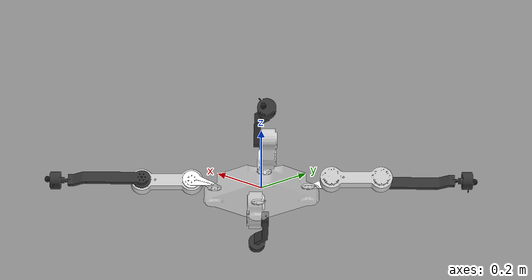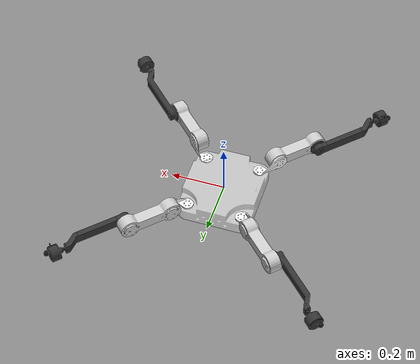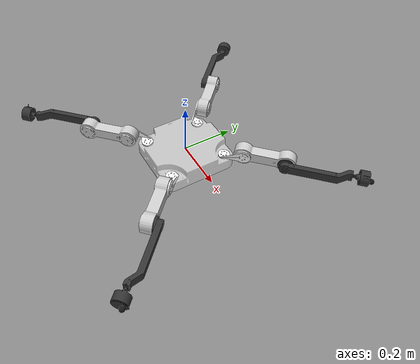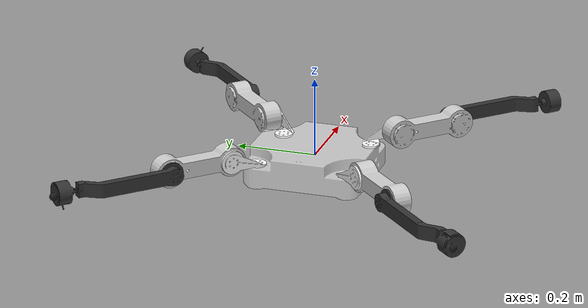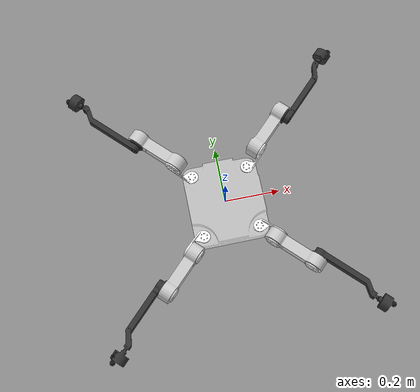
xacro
<?xml version="1.0" encoding="utf-8"?>
<robot xmlns:xacro="http://ros.org/wiki/xacro" name="sizu">
  <!-- 过渡用 base（很小的可视box，不参与物理） -->
  <link name="map">
    <visual>
      <origin xyz="0.0 0.0 0.0" rpy="0.0 0.0 0.0" />
      <geometry>
        <box size="0.001 0.001 0.001"/>
      </geometry>
    </visual>
  </link>

  <joint name="map_joint" type="fixed">
    <parent link="map"/>
    <child link="base_link"/>
    <origin xyz="0.0 0.0 0.0" rpy="0.0 0.0 0.0"/>
  </joint>

  <!-- 机身 base_link -->
   <link name="base_link">
    <inertial>
      <origin xyz="0 0 0" rpy="0 0 0" />
      <mass value="3.2" />
      <inertia ixx="0.0085" ixy="0.0" ixz="0.0" iyy="0.0095" iyz="0.0" izz="0.0140" />
    </inertial>
    <visual>
      <origin xyz="0 0 0" rpy="0 0 0" />
      <geometry>
        <mesh filename="package://sizu_gazebo/meshes/base_link.STL" />
      </geometry>
      <material name="">
        <color rgba="1 1 1 0.5" />
      </material>
    </visual>
    <collision>
      <origin xyz="0 0 0" rpy="0 0 0" />
      <geometry>
        <box size="0.1705 0.1555 0.05"/>
      </geometry>
    </collision>
  </link>

  <!-- ==================== FL Leg ==================== -->
  <link name="coxa_FL">
    <inertial>
      <origin xyz="0.04 0 0" rpy="0 0 0" />
      <mass value="0.08" />
      <inertia ixx="1.5e-5" ixy="0.0" ixz="0.0" iyy="5.0e-5" iyz="0.0" izz="5.0e-5" />
    </inertial>
    <visual>
      <origin xyz="0 0 0" rpy="0 0 0" />
      <geometry>
        <mesh filename="package://sizu_gazebo/meshes/coxa_FL.STL" />
      </geometry>
      <material name="">
        <color rgba="1 1 1 1" />
      </material>
    </visual>
    <collision>
      <origin xyz="0.0 0 -0.02" rpy="0 0 0" />
      <geometry>
        <cylinder length="0.02" radius="0.02"/>
      </geometry>
    </collision>
  </link>

  <joint name="coxa_joint_FL" type="revolute">
    <origin xyz="0.10275 0.11525 0" rpy="0 0 0" />
    <parent link="base_link" />
    <child link="coxa_FL" />
    <axis xyz="0 0 1" />
    <dynamics damping="0.2" friction="0.02" />
    <limit lower="-0.9" upper="0.9" effort="60" velocity="12"/>
  </joint>

  <link name="femur_FL">
    <inertial>
      <origin xyz="0.08 0 0" rpy="0 0 0" />
      <mass value="0.32" />
      <inertia ixx="8.0e-5" ixy="0.0" ixz="0.0" iyy="7.5e-4" iyz="0.0" izz="7.5e-4" />
    </inertial>
    <visual>
      <origin xyz="0 0 0" rpy="0 0 0" />
      <geometry>
        <mesh filename="package://sizu_gazebo/meshes/femur_FL.STL" />
      </geometry>
      <material name="">
        <color rgba="0.8 0.8 0.8 1" />
      </material>
    </visual>
    <collision>
      <origin xyz="0.08 0 -0.015" rpy="0 0 0" />
      <geometry>
        <box size="0.14 0.03 0.03"/>
      </geometry>
    </collision>
  </link>

  <joint name="femur_joint_FL" type="revolute">
    <origin xyz="0.0635321928743235 0.0437332030011003 0.0255" rpy="1.5707963267949 0 0.78539816339745" />
    <parent link="coxa_FL" />
    <child link="femur_FL" />
    <axis xyz="0 0 -1" />
    <dynamics damping="0.2" friction="0.02" />
    <limit lower="-1.6" upper="1.6" effort="60" velocity="16"/>
  </joint>

  <link name="tibia_FL">
    <inertial>
      <origin xyz="0.16 0 0" rpy="0 0 0" />
      <mass value="0.16" />
      <inertia ixx="2.0e-5" ixy="0.0" ixz="0.0" iyy="8.0e-4" iyz="0.0" izz="8.0e-4" />
    </inertial>
    <visual>
      <origin xyz="0 0 0" rpy="0 0 0" />
      <geometry>
        <mesh filename="package://sizu_gazebo/meshes/tibia_FL.STL" />
      </geometry>
      <material name="">
        <color rgba="0.2 0.2 0.2 1" />
      </material>
    </visual>
    <collision>
      <origin xyz="0.16 0 0" rpy="0 0 0" />
      <geometry>
        <box size="0.22 0.022 0.022"/>
      </geometry>
    </collision>
  </link>

  <joint name="tibia_joint_FL" type="revolute">
    <origin xyz="0.164 0 0" rpy="0 0 0" />
    <parent link="femur_FL" />
    <child link="tibia_FL" />
    <axis xyz="0 0 -1" />
    <dynamics damping="0.2" friction="0.02" />
    <limit lower="-2.4" upper="2.4" effort="60" velocity="16"/>
  </joint>

  <joint name="foot_fixed_FL" type="fixed" dont_collapse="true">
    <origin xyz="0.31 0 0" rpy="0 0 0" />
    <parent link="tibia_FL" />
    <child link="foot_FL" />
  </joint>

  <link name="foot_FL">
    <inertial>
      <origin xyz="0 0 0" rpy="0 0 0" />
      <mass value="0.03" />
      <inertia ixx="4.0e-6" ixy="0.0" ixz="0.0" iyy="4.0e-6" iyz="0.0" izz="4.0e-6" />
    </inertial>
    <visual>
      <origin xyz="0 0 0" rpy="0 0 0" />
      <geometry>
        <sphere radius="0.01"/>
      </geometry>
      <material name="">
        <color rgba="0.1 0.1 0.1 1" />
      </material>
    </visual>
    <collision>
      <origin xyz="0 0 0" rpy="0 0 0" />
      <geometry>
        <sphere radius="0.016"/>
      </geometry>
    </collision>
  </link>

  <!-- ==================== RL Leg ==================== -->
  <link name="coxa_RL">
    <inertial>
      <origin xyz="0.04 0 0" rpy="0 0 0" />
      <mass value="0.08" />
      <inertia ixx="1.5e-5" ixy="0.0" ixz="0.0" iyy="5.0e-5" iyz="0.0" izz="5.0e-5" />
    </inertial>
    <visual>
      <origin xyz="0 0 0" rpy="0 0 0" />
      <geometry>
        <mesh filename="package://sizu_gazebo/meshes/coxa_RL.STL" />
      </geometry>
      <material name="">
        <color rgba="1 1 1 1" />
      </material>
    </visual>
    <collision>
      <origin xyz="0.0 0 -0.02" rpy="0 0 0" />
      <geometry>
        <cylinder length="0.02" radius="0.02"/>
      </geometry>
    </collision>
  </link>

  <joint name="coxa_joint_RL" type="revolute">
    <origin xyz="-0.10275 0.11525 0" rpy="0 0 0" />
    <parent link="base_link" />
    <child link="coxa_RL" />
    <axis xyz="0 0 1" />
    <dynamics damping="0.2" friction="0.02" />
    <limit lower="-0.9" upper="0.9" effort="60" velocity="12"/>
  </joint>

  <link name="femur_RL">
    <inertial>
      <origin xyz="0.08 0 0" rpy="0 0 0" />
      <mass value="0.32" />
      <inertia ixx="8.0e-5" ixy="0.0" ixz="0.0" iyy="7.5e-4" iyz="0.0" izz="7.5e-4" />
    </inertial>
    <visual>
      <origin xyz="0 0 0" rpy="0 0 0" />
      <geometry>
        <mesh filename="package://sizu_gazebo/meshes/femur_RL.STL" />
      </geometry>
      <material name="">
        <color rgba="0.8 0.8 0.8 1" />
      </material>
    </visual>
    <collision>
      <origin xyz="0.08 0 -0.015" rpy="0 0 0" />
      <geometry>
        <box size="0.14 0.03 0.03"/>
      </geometry>
    </collision>
  </link>

  <joint name="femur_joint_RL" type="revolute">
    <origin xyz="-0.0635321928743236 0.0437332030011001 0.0255" rpy="-1.5707963267949 0 2.35619449019235" />
    <parent link="coxa_RL" />
    <child link="femur_RL" />
    <axis xyz="0 0 -1" />
    <dynamics damping="0.2" friction="0.02" />
    <limit lower="-1.6" upper="1.6" effort="60" velocity="16"/>
  </joint>

  <link name="tibia_RL">
    <inertial>
      <origin xyz="0.16 0 0" rpy="0 0 0" />
      <mass value="0.16" />
      <inertia ixx="2.0e-5" ixy="0.0" ixz="0.0" iyy="8.0e-4" iyz="0.0" izz="8.0e-4" />
    </inertial>
    <visual>
      <origin xyz="0 0 0" rpy="0 0 0" />
      <geometry>
        <mesh filename="package://sizu_gazebo/meshes/tibia_RL.STL" />
      </geometry>
      <material name="">
        <color rgba="0.2 0.2 0.2 1" />
      </material>
    </visual>
    <collision>
      <origin xyz="0.16 0 0" rpy="0 0 0" />
      <geometry>
        <box size="0.22 0.022 0.022"/>
      </geometry>
    </collision>
  </link>

  <joint name="tibia_joint_RL" type="revolute">
    <origin xyz="0.164 0 0" rpy="0 0 0" />
    <parent link="femur_RL" />
    <child link="tibia_RL" />
    <axis xyz="0 0 -1" />
    <dynamics damping="0.2" friction="0.02" />
    <limit lower="-2.4" upper="2.4" effort="60" velocity="16"/>
  </joint>

  <joint name="foot_fixed_RL" type="fixed" dont_collapse="true">
    <origin xyz="0.31 0 0" rpy="0 0 0" />
    <parent link="tibia_RL" />
    <child link="foot_RL" />
  </joint>

  <link name="foot_RL">
    <inertial>
      <origin xyz="0 0 0" rpy="0 0 0" />
      <mass value="0.03" />
      <inertia ixx="4.0e-6" ixy="0.0" ixz="0.0" iyy="4.0e-6" iyz="0.0" izz="4.0e-6" />
    </inertial>
    <visual>
      <origin xyz="0 0 0" rpy="0 0 0" />
      <geometry>
        <sphere radius="0.01"/>
      </geometry>
      <material name="">
        <color rgba="0.1 0.1 0.1 1" />
      </material>
    </visual>
    <collision>
      <origin xyz="0 0 0" rpy="0 0 0" />
      <geometry>
        <sphere radius="0.016"/>
      </geometry>
    </collision>
  </link>

  <!-- ==================== FR Leg ==================== -->
  <link name="coxa_FR">
    <inertial>
      <origin xyz="0.04 0 0" rpy="0 0 0" />
      <mass value="0.08" />
      <inertia ixx="1.5e-5" ixy="0.0" ixz="0.0" iyy="5.0e-5" iyz="0.0" izz="5.0e-5" />
    </inertial>
    <visual>
      <origin xyz="0 0 0" rpy="0 0 0" />
      <geometry>
        <mesh filename="package://sizu_gazebo/meshes/coxa_FR.STL" />
      </geometry>
      <material name="">
        <color rgba="1 1 1 1" />
      </material>
    </visual>
    <collision>
      <origin xyz="0.0 0 -0.02" rpy="0 0 0" />
      <geometry>
        <cylinder length="0.02" radius="0.02"/>
      </geometry>
    </collision>
  </link>

  <joint name="coxa_joint_FR" type="revolute">
    <origin xyz="0.10275 -0.11525 0" rpy="0 0 0" />
    <parent link="base_link" />
    <child link="coxa_FR" />
    <axis xyz="0 0 1" />
    <dynamics damping="0.2" friction="0.02" />
    <limit lower="-0.9" upper="0.9" effort="60" velocity="12"/>
  </joint>

  <link name="femur_FR">
    <inertial>
      <origin xyz="0.08 0 0" rpy="0 0 0" />
      <mass value="0.32" />
      <inertia ixx="8.0e-5" ixy="0.0" ixz="0.0" iyy="7.5e-4" iyz="0.0" izz="7.5e-4" />
    </inertial>
    <visual>
      <origin xyz="0 0 0" rpy="0 0 0" />
      <geometry>
        <mesh filename="package://sizu_gazebo/meshes/femur_FR.STL" />
      </geometry>
      <material name="">
        <color rgba="0.8 0.8 0.8 1" />
      </material>
    </visual>
    <collision>
      <origin xyz="0.08 0 -0.015" rpy="0 0 0" />
      <geometry>
        <box size="0.14 0.03 0.03"/>
      </geometry>
    </collision>
  </link>

  <joint name="femur_joint_FR" type="revolute">
    <origin xyz="0.0635321928743236 -0.0437332030011001 0.0255000000000001" rpy="-1.5707963267949 0 -0.785398163397447" />
    <parent link="coxa_FR" />
    <child link="femur_FR" />
    <axis xyz="0 0 -1" />
    <dynamics damping="0.2" friction="0.02" />
    <limit lower="-1.6" upper="1.6" effort="60" velocity="16"/>
  </joint>

  <link name="tibia_FR">
    <inertial>
      <origin xyz="0.16 0 0" rpy="0 0 0" />
      <mass value="0.16" />
      <inertia ixx="2.0e-5" ixy="0.0" ixz="0.0" iyy="8.0e-4" iyz="0.0" izz="8.0e-4" />
    </inertial>
    <visual>
      <origin xyz="0 0 0" rpy="0 0 0" />
      <geometry>
        <mesh filename="package://sizu_gazebo/meshes/tibia_FR.STL" />
      </geometry>
      <material name="">
        <color rgba="0.2 0.2 0.2 1" />
      </material>
    </visual>
    <collision>
      <origin xyz="0.16 0 0" rpy="0 0 0" />
      <geometry>
        <box size="0.22 0.022 0.022"/>
      </geometry>
    </collision>
  </link>

  <joint name="tibia_joint_FR" type="revolute">
    <origin xyz="0.164 0 0" rpy="0 0 0" />
    <parent link="femur_FR" />
    <child link="tibia_FR" />
    <axis xyz="0 0 -1" />
    <dynamics damping="0.2" friction="0.02" />
    <limit lower="-2.4" upper="2.4" effort="60" velocity="16"/>
  </joint>

  <joint name="foot_fixed_FR" type="fixed" dont_collapse="true">
    <origin xyz="0.31 0 0" rpy="0 0 0" />
    <parent link="tibia_FR" />
    <child link="foot_FR" />
  </joint>

  <link name="foot_FR">
    <inertial>
      <origin xyz="0 0 0" rpy="0 0 0" />
      <mass value="0.03" />
      <inertia ixx="4.0e-6" ixy="0.0" ixz="0.0" iyy="4.0e-6" iyz="0.0" izz="4.0e-6" />
    </inertial>
    <visual>
      <origin xyz="0 0 0" rpy="0 0 0" />
      <geometry>
        <sphere radius="0.01"/>
      </geometry>
      <material name="">
        <color rgba="0.1 0.1 0.1 1" />
      </material>
    </visual>
    <collision>
      <origin xyz="0 0 0" rpy="0 0 0" />
      <geometry>
        <sphere radius="0.016"/>
      </geometry>
    </collision>
  </link>

  <!-- ==================== RR Leg ==================== -->
  <link name="coxa_RR">
    <inertial>
      <origin xyz="0.04 0 0" rpy="0 0 0" />
      <mass value="0.08" />
      <inertia ixx="1.5e-5" ixy="0.0" ixz="0.0" iyy="5.0e-5" iyz="0.0" izz="5.0e-5" />
    </inertial>
    <visual>
      <origin xyz="0 0 0" rpy="0 0 0" />
      <geometry>
        <mesh filename="package://sizu_gazebo/meshes/coxa_RR.STL" />
      </geometry>
      <material name="">
        <color rgba="1 1 1 1" />
      </material>
    </visual>
    <collision>
      <origin xyz="0.0 0 -0.02" rpy="0 0 0" />
      <geometry>
        <cylinder length="0.02" radius="0.02"/>
      </geometry>
    </collision>
  </link>

  <joint name="coxa_joint_RR" type="revolute">
    <origin xyz="-0.10275 -0.11525 0" rpy="0 0 0" />
    <parent link="base_link" />
    <child link="coxa_RR" />
    <axis xyz="0 0 1" />
    <dynamics damping="0.2" friction="0.02" />
    <limit lower="-0.9" upper="0.9" effort="60" velocity="12"/>
  </joint>

  <link name="femur_RR">
    <inertial>
      <origin xyz="0.08 0 0" rpy="0 0 0" />
      <mass value="0.32" />
      <inertia ixx="8.0e-5" ixy="0.0" ixz="0.0" iyy="7.5e-4" iyz="0.0" izz="7.5e-4" />
    </inertial>
    <visual>
      <origin xyz="0 0 0" rpy="0 0 0" />
      <geometry>
        <mesh filename="package://sizu_gazebo/meshes/femur_RR.STL" />
      </geometry>
      <material name="">
        <color rgba="0.8 0.8 0.8 1" />
      </material>
    </visual>
    <collision>
      <origin xyz="0.08 0 -0.015" rpy="0 0 0" />
      <geometry>
        <box size="0.14 0.03 0.03"/>
      </geometry>
    </collision>
  </link>

  <joint name="femur_joint_RR" type="revolute">
    <origin xyz="-0.0635321928743236 -0.0437332030011001 0.0255" rpy="1.5707963267949 0 -2.35619449019235" />
    <parent link="coxa_RR" />
    <child link="femur_RR" />
    <axis xyz="0 0 -1" />
    <dynamics damping="0.2" friction="0.02" />
    <limit lower="-1.6" upper="1.6" effort="60" velocity="16"/>
  </joint>

  <link name="tibia_RR">
    <inertial>
      <origin xyz="0.16 0 0" rpy="0 0 0" />
      <mass value="0.16" />
      <inertia ixx="2.0e-5" ixy="0.0" ixz="0.0" iyy="8.0e-4" iyz="0.0" izz="8.0e-4" />
    </inertial>
    <visual>
      <origin xyz="0 0 0" rpy="0 0 0" />
      <geometry>
        <mesh filename="package://sizu_gazebo/meshes/tibia_RR.STL" />
      </geometry>
      <material name="">
        <color rgba="0.2 0.2 0.2 1" />
      </material>
    </visual>
    <collision>
      <origin xyz="0.16 0 0" rpy="0 0 0" />
      <geometry>
        <box size="0.22 0.022 0.022"/>
      </geometry>
    </collision>
  </link>

  <joint name="tibia_joint_RR" type="revolute">
    <origin xyz="0.164 0 0" rpy="0 0 0" />
    <parent link="femur_RR" />
    <child link="tibia_RR" />
    <axis xyz="0 0 -1" />
    <dynamics damping="0.2" friction="0.02" />
    <limit lower="-2.4" upper="2.4" effort="60" velocity="16"/>
  </joint>

  <joint name="foot_fixed_RR" type="fixed" dont_collapse="true">
    <origin xyz="0.31 0 0" rpy="0 0 0" />
    <parent link="tibia_RR" />
    <child link="foot_RR" />
  </joint>

  <link name="foot_RR">
    <inertial>
      <origin xyz="0 0 0" rpy="0 0 0" />
      <mass value="0.03" />
      <inertia ixx="4.0e-6" ixy="0.0" ixz="0.0" iyy="4.0e-6" iyz="0.0" izz="4.0e-6" />
    </inertial>
    <visual>
      <origin xyz="0 0 0" rpy="0 0 0" />
      <geometry>
        <sphere radius="0.01"/>
      </geometry>
      <material name="">
        <color rgba="0.1 0.1 0.1 1" />
      </material>
    </visual>
    <collision>
      <origin xyz="0 0 0" rpy="0 0 0" />
      <geometry>
        <sphere radius="0.016"/>
      </geometry>
    </collision>
  </link>

</robot>
